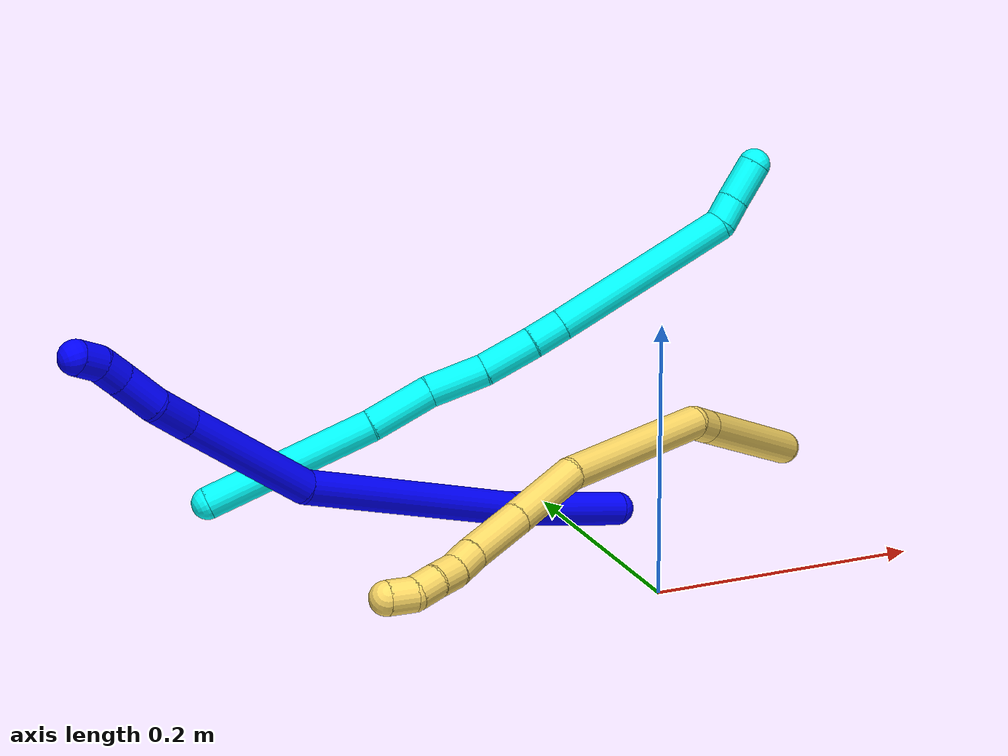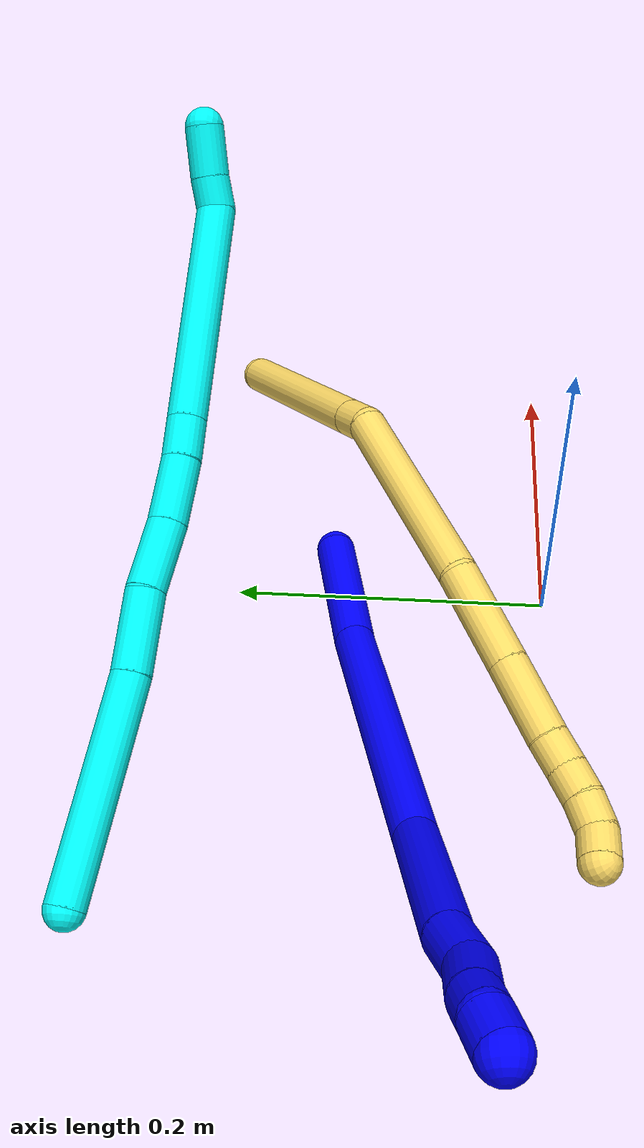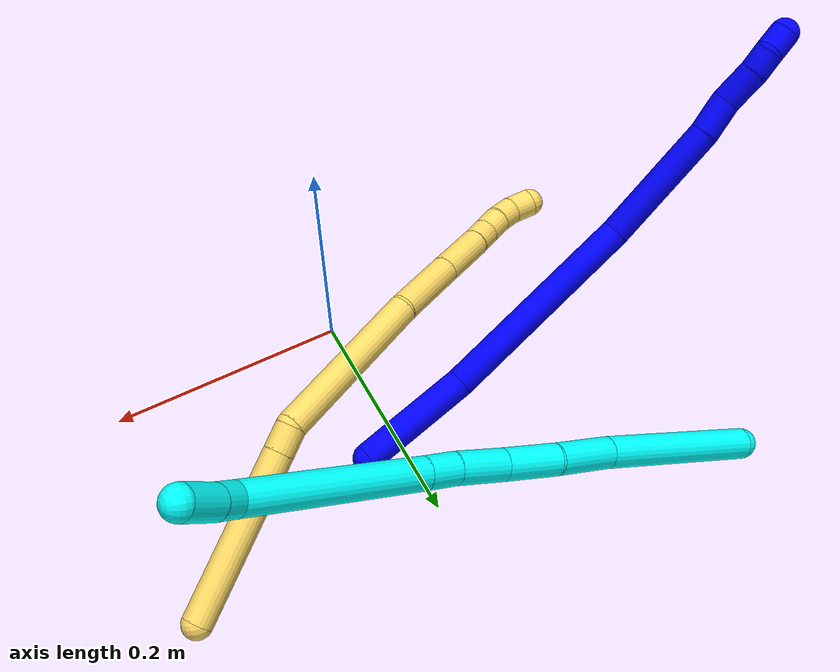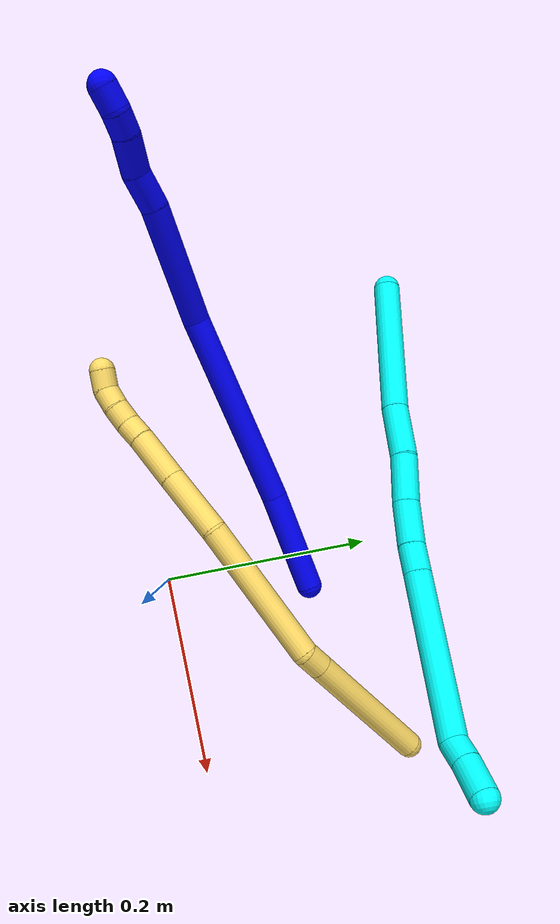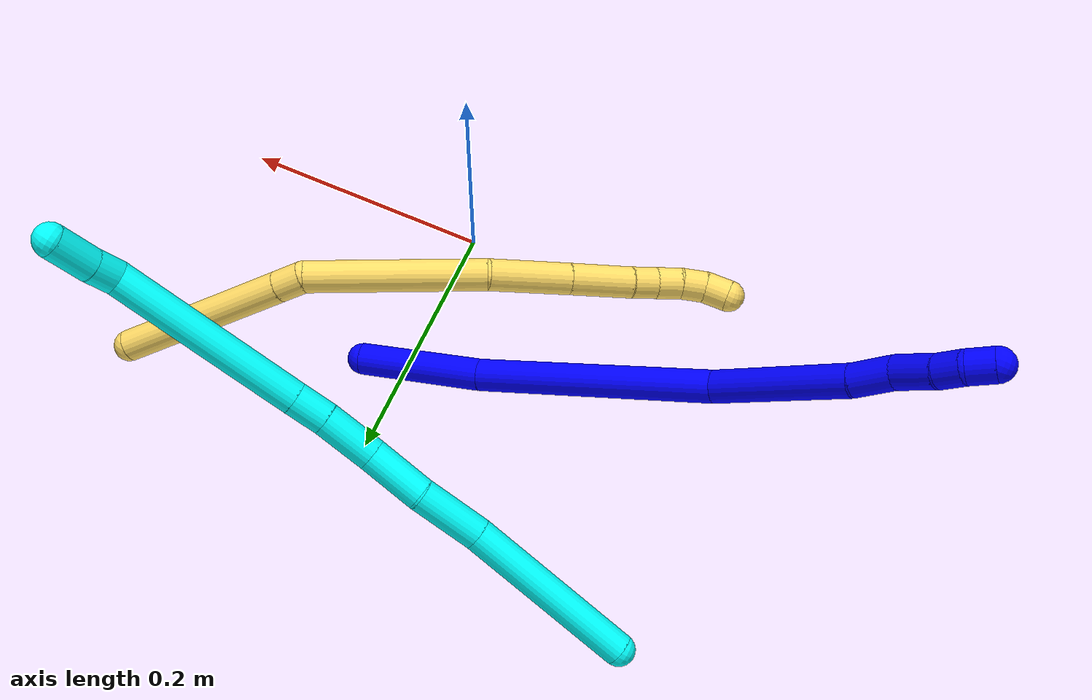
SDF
<sdf version="1.7">
 <world name="default">
  <model name="1">
   <static>0</static>
   <link name="1">
    <collision name="collision-cylinder-e_1_1_4">
     <pose>-0.019024 -0.002788 0.045607 0.061047 -0.394515 -0.012204</pose>
     <geometry><cylinder><radius>0.0125</radius><length>0.098988</length></cylinder></geometry>
     <surface>
      <friction><ode><mu>1.16</mu><mu2>1.16</mu2><slip1>0</slip1><slip2>0</slip2></ode></friction>
      <contact><ode><kp>1e+06</kp><kd>1</kd><max_vel>0</max_vel><min_depth>0.001</min_depth></ode></contact>
     </surface>
    </collision>
    <visual name="visual-cylinder-e_1_1_4">
     <pose>-0.019024 -0.002788 0.045607 0.061047 -0.394515 -0.012204</pose>
     <geometry><cylinder><radius>0.0125</radius><length>0.098988</length></cylinder></geometry>
     <material><ambient>0 0 1 1</ambient></material>
    </visual>
    <collision name="collision-cylinder-e_2_4_5">
     <pose>-0.082824 -0.010601 0.172428 0.0618 -0.503063 -0.015886</pose>
     <geometry><cylinder><radius>0.0125</radius><length>0.185752</length></cylinder></geometry>
     <surface>
      <friction><ode><mu>1.16</mu><mu2>1.16</mu2><slip1>0</slip1><slip2>0</slip2></ode></friction>
      <contact><ode><kp>1e+06</kp><kd>1</kd><max_vel>0</max_vel><min_depth>0.001</min_depth></ode></contact>
     </surface>
    </collision>
    <visual name="visual-cylinder-e_2_4_5">
     <pose>-0.082824 -0.010601 0.172428 0.0618 -0.503063 -0.015886</pose>
     <geometry><cylinder><radius>0.0125</radius><length>0.185752</length></cylinder></geometry>
     <material><ambient>0 0 1 1</ambient></material>
    </visual>
    <collision name="collision-cylinder-e_3_5_6">
     <pose>-0.165469 -0.028009 0.292034 0.311998 -0.75382 -0.124351</pose>
     <geometry><cylinder><radius>0.0125</radius><length>0.110658</length></cylinder></geometry>
     <surface>
      <friction><ode><mu>1.16</mu><mu2>1.16</mu2><slip1>0</slip1><slip2>0</slip2></ode></friction>
      <contact><ode><kp>1e+06</kp><kd>1</kd><max_vel>0</max_vel><min_depth>0.001</min_depth></ode></contact>
     </surface>
    </collision>
    <visual name="visual-cylinder-e_3_5_6">
     <pose>-0.165469 -0.028009 0.292034 0.311998 -0.75382 -0.124351</pose>
     <geometry><cylinder><radius>0.0125</radius><length>0.110658</length></cylinder></geometry>
     <material><ambient>0 0 1 1</ambient></material>
    </visual>
    <collision name="collision-cylinder-e_4_6_7">
     <pose>-0.21518 -0.041829 0.341066 0.134319 -0.834321 -0.059598</pose>
     <geometry><cylinder><radius>0.0125</radius><length>0.031972</length></cylinder></geometry>
     <surface>
      <friction><ode><mu>1.16</mu><mu2>1.16</mu2><slip1>0</slip1><slip2>0</slip2></ode></friction>
      <contact><ode><kp>1e+06</kp><kd>1</kd><max_vel>0</max_vel><min_depth>0.001</min_depth></ode></contact>
     </surface>
    </collision>
    <visual name="visual-cylinder-e_4_6_7">
     <pose>-0.21518 -0.041829 0.341066 0.134319 -0.834321 -0.059598</pose>
     <geometry><cylinder><radius>0.0125</radius><length>0.031972</length></cylinder></geometry>
     <material><ambient>0 0 1 1</ambient></material>
    </visual>
    <collision name="collision-cylinder-e_5_7_8">
     <pose>-0.238691 -0.049011 0.36147 0.531774 -0.800158 -0.229323</pose>
     <geometry><cylinder><radius>0.0125</radius><length>0.032523</length></cylinder></geometry>
     <surface>
      <friction><ode><mu>1.16</mu><mu2>1.16</mu2><slip1>0</slip1><slip2>0</slip2></ode></friction>
      <contact><ode><kp>1e+06</kp><kd>1</kd><max_vel>0</max_vel><min_depth>0.001</min_depth></ode></contact>
     </surface>
    </collision>
    <visual name="visual-cylinder-e_5_7_8">
     <pose>-0.238691 -0.049011 0.36147 0.531774 -0.800158 -0.229323</pose>
     <geometry><cylinder><radius>0.0125</radius><length>0.032523</length></cylinder></geometry>
     <material><ambient>0 0 1 1</ambient></material>
    </visual>
    <collision name="collision-cylinder-e_6_8_9">
     <pose>-0.25804 -0.056877 0.377344 0.334284 -0.870947 -0.156673</pose>
     <geometry><cylinder><radius>0.0125</radius><length>0.020085</length></cylinder></geometry>
     <surface>
      <friction><ode><mu>1.16</mu><mu2>1.16</mu2><slip1>0</slip1><slip2>0</slip2></ode></friction>
      <contact><ode><kp>1e+06</kp><kd>1</kd><max_vel>0</max_vel><min_depth>0.001</min_depth></ode></contact>
     </surface>
    </collision>
    <visual name="visual-cylinder-e_6_8_9">
     <pose>-0.25804 -0.056877 0.377344 0.334284 -0.870947 -0.156673</pose>
     <geometry><cylinder><radius>0.0125</radius><length>0.020085</length></cylinder></geometry>
     <material><ambient>0 0 1 1</ambient></material>
    </visual>
    <collision name="collision-cylinder-e_7_9_2">
     <pose>-0.271706 -0.05918 0.391478 0.022547 -0.640761 -0.007482</pose>
     <geometry><cylinder><radius>0.0125</radius><length>0.020023</length></cylinder></geometry>
     <surface>
      <friction><ode><mu>1.16</mu><mu2>1.16</mu2><slip1>0</slip1><slip2>0</slip2></ode></friction>
      <contact><ode><kp>1e+06</kp><kd>1</kd><max_vel>0</max_vel><min_depth>0.001</min_depth></ode></contact>
     </surface>
    </collision>
    <visual name="visual-cylinder-e_7_9_2">
     <pose>-0.271706 -0.05918 0.391478 0.022547 -0.640761 -0.007482</pose>
     <geometry><cylinder><radius>0.0125</radius><length>0.020023</length></cylinder></geometry>
     <material><ambient>0 0 1 1</ambient></material>
    </visual>
    <collision name="collision-sphere-2">
     <pose>-0.277691 -0.059361 0.399501 0 -0 0</pose>
     <geometry><sphere><radius>0.0125</radius></sphere></geometry>
     <surface>
      <friction><ode><mu>1.16</mu><mu2>1.16</mu2><slip1>0</slip1><slip2>0</slip2></ode></friction>
      <contact><ode><kp>1e+06</kp><kd>1</kd><max_vel>0</max_vel><min_depth>0.001</min_depth></ode></contact>
     </surface>
    </collision>
    <visual name="visual-sphere-2">
     <pose>-0.277691 -0.059361 0.399501 0 -0 0</pose>
     <geometry><sphere><radius>0.0125</radius></sphere></geometry>
     <material><ambient>0 0 1 1</ambient></material>
    </visual>
    <collision name="collision-sphere-9">
     <pose>-0.265722 -0.058999 0.383454 0 -0 0</pose>
     <geometry><sphere><radius>0.0125</radius></sphere></geometry>
     <surface>
      <friction><ode><mu>1.16</mu><mu2>1.16</mu2><slip1>0</slip1><slip2>0</slip2></ode></friction>
      <contact><ode><kp>1e+06</kp><kd>1</kd><max_vel>0</max_vel><min_depth>0.001</min_depth></ode></contact>
     </surface>
    </collision>
    <visual name="visual-sphere-9">
     <pose>-0.265722 -0.058999 0.383454 0 -0 0</pose>
     <geometry><sphere><radius>0.0125</radius></sphere></geometry>
     <material><ambient>0 0 1 1</ambient></material>
    </visual>
    <collision name="collision-sphere-4">
     <pose>-0.038047 -0.005575 0.091214 0 -0 0</pose>
     <geometry><sphere><radius>0.0125</radius></sphere></geometry>
     <surface>
      <friction><ode><mu>1.16</mu><mu2>1.16</mu2><slip1>0</slip1><slip2>0</slip2></ode></friction>
      <contact><ode><kp>1e+06</kp><kd>1</kd><max_vel>0</max_vel><min_depth>0.001</min_depth></ode></contact>
     </surface>
    </collision>
    <visual name="visual-sphere-4">
     <pose>-0.038047 -0.005575 0.091214 0 -0 0</pose>
     <geometry><sphere><radius>0.0125</radius></sphere></geometry>
     <material><ambient>0 0 1 1</ambient></material>
    </visual>
    <collision name="collision-sphere-1">
     <geometry><sphere><radius>0.0125</radius></sphere></geometry>
     <surface>
      <friction><ode><mu>1.16</mu><mu2>1.16</mu2><slip1>0</slip1><slip2>0</slip2></ode></friction>
      <contact><ode><kp>1e+06</kp><kd>1</kd><max_vel>0</max_vel><min_depth>0.001</min_depth></ode></contact>
     </surface>
    </collision>
    <visual name="visual-sphere-1">
     <geometry><sphere><radius>0.0125</radius></sphere></geometry>
     <material><ambient>0 0 1 1</ambient></material>
    </visual>
    <collision name="collision-sphere-8">
     <pose>-0.250358 -0.054755 0.371234 0 -0 0</pose>
     <geometry><sphere><radius>0.0125</radius></sphere></geometry>
     <surface>
      <friction><ode><mu>1.16</mu><mu2>1.16</mu2><slip1>0</slip1><slip2>0</slip2></ode></friction>
      <contact><ode><kp>1e+06</kp><kd>1</kd><max_vel>0</max_vel><min_depth>0.001</min_depth></ode></contact>
     </surface>
    </collision>
    <visual name="visual-sphere-8">
     <pose>-0.250358 -0.054755 0.371234 0 -0 0</pose>
     <geometry><sphere><radius>0.0125</radius></sphere></geometry>
     <material><ambient>0 0 1 1</ambient></material>
    </visual>
    <collision name="collision-sphere-5">
     <pose>-0.1276 -0.015626 0.253642 0 -0 0</pose>
     <geometry><sphere><radius>0.0125</radius></sphere></geometry>
     <surface>
      <friction><ode><mu>1.16</mu><mu2>1.16</mu2><slip1>0</slip1><slip2>0</slip2></ode></friction>
      <contact><ode><kp>1e+06</kp><kd>1</kd><max_vel>0</max_vel><min_depth>0.001</min_depth></ode></contact>
     </surface>
    </collision>
    <visual name="visual-sphere-5">
     <pose>-0.1276 -0.015626 0.253642 0 -0 0</pose>
     <geometry><sphere><radius>0.0125</radius></sphere></geometry>
     <material><ambient>0 0 1 1</ambient></material>
    </visual>
    <collision name="collision-sphere-6">
     <pose>-0.203337 -0.040391 0.330425 0 -0 0</pose>
     <geometry><sphere><radius>0.0125</radius></sphere></geometry>
     <surface>
      <friction><ode><mu>1.16</mu><mu2>1.16</mu2><slip1>0</slip1><slip2>0</slip2></ode></friction>
      <contact><ode><kp>1e+06</kp><kd>1</kd><max_vel>0</max_vel><min_depth>0.001</min_depth></ode></contact>
     </surface>
    </collision>
    <visual name="visual-sphere-6">
     <pose>-0.203337 -0.040391 0.330425 0 -0 0</pose>
     <geometry><sphere><radius>0.0125</radius></sphere></geometry>
     <material><ambient>0 0 1 1</ambient></material>
    </visual>
    <collision name="collision-sphere-7">
     <pose>-0.227024 -0.043267 0.351707 0 -0 0</pose>
     <geometry><sphere><radius>0.0125</radius></sphere></geometry>
     <surface>
      <friction><ode><mu>1.16</mu><mu2>1.16</mu2><slip1>0</slip1><slip2>0</slip2></ode></friction>
      <contact><ode><kp>1e+06</kp><kd>1</kd><max_vel>0</max_vel><min_depth>0.001</min_depth></ode></contact>
     </surface>
    </collision>
    <visual name="visual-sphere-7">
     <pose>-0.227024 -0.043267 0.351707 0 -0 0</pose>
     <geometry><sphere><radius>0.0125</radius></sphere></geometry>
     <material><ambient>0 0 1 1</ambient></material>
    </visual>
    <inertial>
     <pose>-0.121688 -0.021206 0.213874 0 -0 0</pose>
     <mass>0.5</mass>
     <inertia>
      <ixx>0.000603</ixx>
      <ixy>0</ixy>
      <ixz>0</ixz>
      <iyy>0.000725</iyy>
      <iyz>0</iyz>
      <izz>0.000475</izz>
     </inertia>
    </inertial>
   </link>
   <pose>0.032067 0.138016 0.011454 -2.01235 1.14097 1.24624</pose>
  </model>
  <model name="3">
   <static>0</static>
   <link name="3">
    <collision name="collision-cylinder-e_1_1_4">
     <pose>0.008327 0.005893 0.067107 -0.087591 0.122984 -0.005396</pose>
     <geometry><cylinder><radius>0.0125</radius><length>0.135756</length></cylinder></geometry>
     <surface>
      <friction><ode><mu>1.16</mu><mu2>1.16</mu2><slip1>0</slip1><slip2>0</slip2></ode></friction>
      <contact><ode><kp>1e+06</kp><kd>1</kd><max_vel>0</max_vel><min_depth>0.001</min_depth></ode></contact>
     </surface>
    </collision>
    <visual name="visual-cylinder-e_1_1_4">
     <pose>0.008327 0.005893 0.067107 -0.087591 0.122984 -0.005396</pose>
     <geometry><cylinder><radius>0.0125</radius><length>0.135756</length></cylinder></geometry>
     <material><ambient>0.003922 1 0.996078 1</ambient></material>
    </visual>
    <collision name="collision-cylinder-e_2_4_5">
     <pose>0.018675 0.011497 0.159555 0.011397 0.079574 0.000454</pose>
     <geometry><cylinder><radius>0.0125</radius><length>0.050845</length></cylinder></geometry>
     <surface>
      <friction><ode><mu>1.16</mu><mu2>1.16</mu2><slip1>0</slip1><slip2>0</slip2></ode></friction>
      <contact><ode><kp>1e+06</kp><kd>1</kd><max_vel>0</max_vel><min_depth>0.001</min_depth></ode></contact>
     </surface>
    </collision>
    <visual name="visual-cylinder-e_2_4_5">
     <pose>0.018675 0.011497 0.159555 0.011397 0.079574 0.000454</pose>
     <geometry><cylinder><radius>0.0125</radius><length>0.050845</length></cylinder></geometry>
     <material><ambient>0.003922 1 0.996078 1</ambient></material>
    </visual>
    <collision name="collision-cylinder-e_3_5_6">
     <pose>0.022794 0.014568 0.207063 -0.150407 0.093309 -0.007036</pose>
     <geometry><cylinder><radius>0.0125</radius><length>0.045039</length></cylinder></geometry>
     <surface>
      <friction><ode><mu>1.16</mu><mu2>1.16</mu2><slip1>0</slip1><slip2>0</slip2></ode></friction>
      <contact><ode><kp>1e+06</kp><kd>1</kd><max_vel>0</max_vel><min_depth>0.001</min_depth></ode></contact>
     </surface>
    </collision>
    <visual name="visual-cylinder-e_3_5_6">
     <pose>0.022794 0.014568 0.207063 -0.150407 0.093309 -0.007036</pose>
     <geometry><cylinder><radius>0.0125</radius><length>0.045039</length></cylinder></geometry>
     <material><ambient>0.003922 1 0.996078 1</ambient></material>
    </visual>
    <collision name="collision-cylinder-e_4_6_7">
     <pose>0.027433 0.018205 0.250039 -0.013307 0.121532 -0.00081</pose>
     <geometry><cylinder><radius>0.0125</radius><length>0.041928</length></cylinder></geometry>
     <surface>
      <friction><ode><mu>1.16</mu><mu2>1.16</mu2><slip1>0</slip1><slip2>0</slip2></ode></friction>
      <contact><ode><kp>1e+06</kp><kd>1</kd><max_vel>0</max_vel><min_depth>0.001</min_depth></ode></contact>
     </surface>
    </collision>
    <visual name="visual-cylinder-e_4_6_7">
     <pose>0.027433 0.018205 0.250039 -0.013307 0.121532 -0.00081</pose>
     <geometry><cylinder><radius>0.0125</radius><length>0.041928</length></cylinder></geometry>
     <material><ambient>0.003922 1 0.996078 1</ambient></material>
    </visual>
    <collision name="collision-cylinder-e_5_7_8">
     <pose>0.030771 0.018023 0.284056 0.03469 0.060172 0.001044</pose>
     <geometry><cylinder><radius>0.0125</radius><length>0.026484</length></cylinder></geometry>
     <surface>
      <friction><ode><mu>1.16</mu><mu2>1.16</mu2><slip1>0</slip1><slip2>0</slip2></ode></friction>
      <contact><ode><kp>1e+06</kp><kd>1</kd><max_vel>0</max_vel><min_depth>0.001</min_depth></ode></contact>
     </surface>
    </collision>
    <visual name="visual-cylinder-e_5_7_8">
     <pose>0.030771 0.018023 0.284056 0.03469 0.060172 0.001044</pose>
     <geometry><cylinder><radius>0.0125</radius><length>0.026484</length></cylinder></geometry>
     <material><ambient>0.003922 1 0.996078 1</ambient></material>
    </visual>
    <collision name="collision-cylinder-e_6_8_9">
     <pose>0.037388 0.014015 0.370076 0.04871 0.079672 0.001942</pose>
     <geometry><cylinder><radius>0.0125</radius><length>0.146256</length></cylinder></geometry>
     <surface>
      <friction><ode><mu>1.16</mu><mu2>1.16</mu2><slip1>0</slip1><slip2>0</slip2></ode></friction>
      <contact><ode><kp>1e+06</kp><kd>1</kd><max_vel>0</max_vel><min_depth>0.001</min_depth></ode></contact>
     </surface>
    </collision>
    <visual name="visual-cylinder-e_6_8_9">
     <pose>0.037388 0.014015 0.370076 0.04871 0.079672 0.001942</pose>
     <geometry><cylinder><radius>0.0125</radius><length>0.146256</length></cylinder></geometry>
     <material><ambient>0.003922 1 0.996078 1</ambient></material>
    </visual>
    <collision name="collision-cylinder-e_7_9_10">
     <pose>0.044392 0.005076 0.451834 0.542143 0.112925 0.031414</pose>
     <geometry><cylinder><radius>0.0125</radius><length>0.021027</length></cylinder></geometry>
     <surface>
      <friction><ode><mu>1.16</mu><mu2>1.16</mu2><slip1>0</slip1><slip2>0</slip2></ode></friction>
      <contact><ode><kp>1e+06</kp><kd>1</kd><max_vel>0</max_vel><min_depth>0.001</min_depth></ode></contact>
     </surface>
    </collision>
    <visual name="visual-cylinder-e_7_9_10">
     <pose>0.044392 0.005076 0.451834 0.542143 0.112925 0.031414</pose>
     <geometry><cylinder><radius>0.0125</radius><length>0.021027</length></cylinder></geometry>
     <material><ambient>0.003922 1 0.996078 1</ambient></material>
    </visual>
    <collision name="collision-cylinder-e_8_10_2">
     <pose>0.048685 -0.00808 0.474811 0.505605 0.191444 0.049597</pose>
     <geometry><cylinder><radius>0.0125</radius><length>0.032665</length></cylinder></geometry>
     <surface>
      <friction><ode><mu>1.16</mu><mu2>1.16</mu2><slip1>0</slip1><slip2>0</slip2></ode></friction>
      <contact><ode><kp>1e+06</kp><kd>1</kd><max_vel>0</max_vel><min_depth>0.001</min_depth></ode></contact>
     </surface>
    </collision>
    <visual name="visual-cylinder-e_8_10_2">
     <pose>0.048685 -0.00808 0.474811 0.505605 0.191444 0.049597</pose>
     <geometry><cylinder><radius>0.0125</radius><length>0.032665</length></cylinder></geometry>
     <material><ambient>0.003922 1 0.996078 1</ambient></material>
    </visual>
    <collision name="collision-sphere-2">
     <pose>0.051793 -0.015846 0.488839 0 -0 0</pose>
     <geometry><sphere><radius>0.0125</radius></sphere></geometry>
     <surface>
      <friction><ode><mu>1.16</mu><mu2>1.16</mu2><slip1>0</slip1><slip2>0</slip2></ode></friction>
      <contact><ode><kp>1e+06</kp><kd>1</kd><max_vel>0</max_vel><min_depth>0.001</min_depth></ode></contact>
     </surface>
    </collision>
    <visual name="visual-sphere-2">
     <pose>0.051793 -0.015846 0.488839 0 -0 0</pose>
     <geometry><sphere><radius>0.0125</radius></sphere></geometry>
     <material><ambient>0.003922 1 0.996078 1</ambient></material>
    </visual>
    <collision name="collision-sphere-10">
     <pose>0.045577 -0.000314 0.460783 0 -0 0</pose>
     <geometry><sphere><radius>0.0125</radius></sphere></geometry>
     <surface>
      <friction><ode><mu>1.16</mu><mu2>1.16</mu2><slip1>0</slip1><slip2>0</slip2></ode></friction>
      <contact><ode><kp>1e+06</kp><kd>1</kd><max_vel>0</max_vel><min_depth>0.001</min_depth></ode></contact>
     </surface>
    </collision>
    <visual name="visual-sphere-10">
     <pose>0.045577 -0.000314 0.460783 0 -0 0</pose>
     <geometry><sphere><radius>0.0125</radius></sphere></geometry>
     <material><ambient>0.003922 1 0.996078 1</ambient></material>
    </visual>
    <collision name="collision-sphere-9">
     <pose>0.043208 0.010466 0.442886 0 -0 0</pose>
     <geometry><sphere><radius>0.0125</radius></sphere></geometry>
     <surface>
      <friction><ode><mu>1.16</mu><mu2>1.16</mu2><slip1>0</slip1><slip2>0</slip2></ode></friction>
      <contact><ode><kp>1e+06</kp><kd>1</kd><max_vel>0</max_vel><min_depth>0.001</min_depth></ode></contact>
     </surface>
    </collision>
    <visual name="visual-sphere-9">
     <pose>0.043208 0.010466 0.442886 0 -0 0</pose>
     <geometry><sphere><radius>0.0125</radius></sphere></geometry>
     <material><ambient>0.003922 1 0.996078 1</ambient></material>
    </visual>
    <collision name="collision-sphere-4">
     <pose>0.016654 0.011786 0.134214 0 -0 0</pose>
     <geometry><sphere><radius>0.0125</radius></sphere></geometry>
     <surface>
      <friction><ode><mu>1.16</mu><mu2>1.16</mu2><slip1>0</slip1><slip2>0</slip2></ode></friction>
      <contact><ode><kp>1e+06</kp><kd>1</kd><max_vel>0</max_vel><min_depth>0.001</min_depth></ode></contact>
     </surface>
    </collision>
    <visual name="visual-sphere-4">
     <pose>0.016654 0.011786 0.134214 0 -0 0</pose>
     <geometry><sphere><radius>0.0125</radius></sphere></geometry>
     <material><ambient>0.003922 1 0.996078 1</ambient></material>
    </visual>
    <collision name="collision-sphere-1">
     <geometry><sphere><radius>0.0125</radius></sphere></geometry>
     <surface>
      <friction><ode><mu>1.16</mu><mu2>1.16</mu2><slip1>0</slip1><slip2>0</slip2></ode></friction>
      <contact><ode><kp>1e+06</kp><kd>1</kd><max_vel>0</max_vel><min_depth>0.001</min_depth></ode></contact>
     </surface>
    </collision>
    <visual name="visual-sphere-1">
     <geometry><sphere><radius>0.0125</radius></sphere></geometry>
     <material><ambient>0.003922 1 0.996078 1</ambient></material>
    </visual>
    <collision name="collision-sphere-8">
     <pose>0.031567 0.017565 0.297266 0 -0 0</pose>
     <geometry><sphere><radius>0.0125</radius></sphere></geometry>
     <surface>
      <friction><ode><mu>1.16</mu><mu2>1.16</mu2><slip1>0</slip1><slip2>0</slip2></ode></friction>
      <contact><ode><kp>1e+06</kp><kd>1</kd><max_vel>0</max_vel><min_depth>0.001</min_depth></ode></contact>
     </surface>
    </collision>
    <visual name="visual-sphere-8">
     <pose>0.031567 0.017565 0.297266 0 -0 0</pose>
     <geometry><sphere><radius>0.0125</radius></sphere></geometry>
     <material><ambient>0.003922 1 0.996078 1</ambient></material>
    </visual>
    <collision name="collision-sphere-5">
     <pose>0.020695 0.011209 0.184895 0 -0 0</pose>
     <geometry><sphere><radius>0.0125</radius></sphere></geometry>
     <surface>
      <friction><ode><mu>1.16</mu><mu2>1.16</mu2><slip1>0</slip1><slip2>0</slip2></ode></friction>
      <contact><ode><kp>1e+06</kp><kd>1</kd><max_vel>0</max_vel><min_depth>0.001</min_depth></ode></contact>
     </surface>
    </collision>
    <visual name="visual-sphere-5">
     <pose>0.020695 0.011209 0.184895 0 -0 0</pose>
     <geometry><sphere><radius>0.0125</radius></sphere></geometry>
     <material><ambient>0.003922 1 0.996078 1</ambient></material>
    </visual>
    <collision name="collision-sphere-6">
     <pose>0.024892 0.017928 0.229231 0 -0 0</pose>
     <geometry><sphere><radius>0.0125</radius></sphere></geometry>
     <surface>
      <friction><ode><mu>1.16</mu><mu2>1.16</mu2><slip1>0</slip1><slip2>0</slip2></ode></friction>
      <contact><ode><kp>1e+06</kp><kd>1</kd><max_vel>0</max_vel><min_depth>0.001</min_depth></ode></contact>
     </surface>
    </collision>
    <visual name="visual-sphere-6">
     <pose>0.024892 0.017928 0.229231 0 -0 0</pose>
     <geometry><sphere><radius>0.0125</radius></sphere></geometry>
     <material><ambient>0.003922 1 0.996078 1</ambient></material>
    </visual>
    <collision name="collision-sphere-7">
     <pose>0.029975 0.018482 0.270846 0 -0 0</pose>
     <geometry><sphere><radius>0.0125</radius></sphere></geometry>
     <surface>
      <friction><ode><mu>1.16</mu><mu2>1.16</mu2><slip1>0</slip1><slip2>0</slip2></ode></friction>
      <contact><ode><kp>1e+06</kp><kd>1</kd><max_vel>0</max_vel><min_depth>0.001</min_depth></ode></contact>
     </surface>
    </collision>
    <visual name="visual-sphere-7">
     <pose>0.029975 0.018482 0.270846 0 -0 0</pose>
     <geometry><sphere><radius>0.0125</radius></sphere></geometry>
     <material><ambient>0.003922 1 0.996078 1</ambient></material>
    </visual>
    <inertial>
     <pose>0.026127 0.010348 0.247383 0 -0 0</pose>
     <mass>0.5</mass>
     <inertia>
      <ixx>0.00052</ixx>
      <ixy>0</ixy>
      <ixz>0</ixz>
      <iyy>0.000515</iyy>
      <iyz>0</iyz>
      <izz>-1.7e-05</izz>
     </inertia>
    </inertial>
   </link>
   <pose>-0.244589 0.271774 0.011495 -1.09011 -0.622008 -1.88621</pose>
  </model>
  <model name="5">
   <static>0</static>
   <link name="5">
    <collision name="collision-cylinder-e_1_1_4">
     <pose>-0.044295 0.012026 0.052622 -0.224686 -0.687179 0.080684</pose>
     <geometry><cylinder><radius>0.0125</radius><length>0.139653</length></cylinder></geometry>
     <surface>
      <friction><ode><mu>1.16</mu><mu2>1.16</mu2><slip1>0</slip1><slip2>0</slip2></ode></friction>
      <contact><ode><kp>1e+06</kp><kd>1</kd><max_vel>0</max_vel><min_depth>0.001</min_depth></ode></contact>
     </surface>
    </collision>
    <visual name="visual-cylinder-e_1_1_4">
     <pose>-0.044295 0.012026 0.052622 -0.224686 -0.687179 0.080684</pose>
     <geometry><cylinder><radius>0.0125</radius><length>0.139653</length></cylinder></geometry>
     <material><ambient>1 0.858824 0.4 1</ambient></material>
    </visual>
    <collision name="collision-cylinder-e_2_4_5">
     <pose>-0.095582 0.025994 0.113665 -0.226595 -0.680225 0.080485</pose>
     <geometry><cylinder><radius>0.0125</radius><length>0.022234</length></cylinder></geometry>
     <surface>
      <friction><ode><mu>1.16</mu><mu2>1.16</mu2><slip1>0</slip1><slip2>0</slip2></ode></friction>
      <contact><ode><kp>1e+06</kp><kd>1</kd><max_vel>0</max_vel><min_depth>0.001</min_depth></ode></contact>
     </surface>
    </collision>
    <visual name="visual-cylinder-e_2_4_5">
     <pose>-0.095582 0.025994 0.113665 -0.226595 -0.680225 0.080485</pose>
     <geometry><cylinder><radius>0.0125</radius><length>0.022234</length></cylinder></geometry>
     <material><ambient>1 0.858824 0.4 1</ambient></material>
    </visual>
    <collision name="collision-cylinder-e_3_5_6">
     <pose>-0.166745 0.031574 0.151764 -0.121961 -1.13477 0.077781</pose>
     <geometry><cylinder><radius>0.0125</radius><length>0.14159</length></cylinder></geometry>
     <surface>
      <friction><ode><mu>1.16</mu><mu2>1.16</mu2><slip1>0</slip1><slip2>0</slip2></ode></friction>
      <contact><ode><kp>1e+06</kp><kd>1</kd><max_vel>0</max_vel><min_depth>0.001</min_depth></ode></contact>
     </surface>
    </collision>
    <visual name="visual-cylinder-e_3_5_6">
     <pose>-0.166745 0.031574 0.151764 -0.121961 -1.13477 0.077781</pose>
     <geometry><cylinder><radius>0.0125</radius><length>0.14159</length></cylinder></geometry>
     <material><ambient>1 0.858824 0.4 1</ambient></material>
    </visual>
    <collision name="collision-cylinder-e_4_6_7">
     <pose>-0.261939 0.031049 0.190431 0.433647 -1.26171 -0.31907</pose>
     <geometry><cylinder><radius>0.0125</radius><length>0.06513</length></cylinder></geometry>
     <surface>
      <friction><ode><mu>1.16</mu><mu2>1.16</mu2><slip1>0</slip1><slip2>0</slip2></ode></friction>
      <contact><ode><kp>1e+06</kp><kd>1</kd><max_vel>0</max_vel><min_depth>0.001</min_depth></ode></contact>
     </surface>
    </collision>
    <visual name="visual-cylinder-e_4_6_7">
     <pose>-0.261939 0.031049 0.190431 0.433647 -1.26171 -0.31907</pose>
     <geometry><cylinder><radius>0.0125</radius><length>0.06513</length></cylinder></geometry>
     <material><ambient>1 0.858824 0.4 1</ambient></material>
    </visual>
    <collision name="collision-cylinder-e_5_7_8">
     <pose>-0.317041 0.024006 0.206392 0.391698 -1.2672 -0.289458</pose>
     <geometry><cylinder><radius>0.0125</radius><length>0.05047</length></cylinder></geometry>
     <surface>
      <friction><ode><mu>1.16</mu><mu2>1.16</mu2><slip1>0</slip1><slip2>0</slip2></ode></friction>
      <contact><ode><kp>1e+06</kp><kd>1</kd><max_vel>0</max_vel><min_depth>0.001</min_depth></ode></contact>
     </surface>
    </collision>
    <visual name="visual-cylinder-e_5_7_8">
     <pose>-0.317041 0.024006 0.206392 0.391698 -1.2672 -0.289458</pose>
     <geometry><cylinder><radius>0.0125</radius><length>0.05047</length></cylinder></geometry>
     <material><ambient>1 0.858824 0.4 1</ambient></material>
    </visual>
    <collision name="collision-cylinder-e_6_8_9">
     <pose>-0.350914 0.019198 0.216268 0.586422 -1.22889 -0.41976</pose>
     <geometry><cylinder><radius>0.0125</radius><length>0.020788</length></cylinder></geometry>
     <surface>
      <friction><ode><mu>1.16</mu><mu2>1.16</mu2><slip1>0</slip1><slip2>0</slip2></ode></friction>
      <contact><ode><kp>1e+06</kp><kd>1</kd><max_vel>0</max_vel><min_depth>0.001</min_depth></ode></contact>
     </surface>
    </collision>
    <visual name="visual-cylinder-e_6_8_9">
     <pose>-0.350914 0.019198 0.216268 0.586422 -1.22889 -0.41976</pose>
     <geometry><cylinder><radius>0.0125</radius><length>0.020788</length></cylinder></geometry>
     <material><ambient>1 0.858824 0.4 1</ambient></material>
    </visual>
    <collision name="collision-cylinder-e_7_9_10">
     <pose>-0.370024 0.017259 0.222864 0.002892 -1.19334 -0.001965</pose>
     <geometry><cylinder><radius>0.0125</radius><length>0.020045</length></cylinder></geometry>
     <surface>
      <friction><ode><mu>1.16</mu><mu2>1.16</mu2><slip1>0</slip1><slip2>0</slip2></ode></friction>
      <contact><ode><kp>1e+06</kp><kd>1</kd><max_vel>0</max_vel><min_depth>0.001</min_depth></ode></contact>
     </surface>
    </collision>
    <visual name="visual-cylinder-e_7_9_10">
     <pose>-0.370024 0.017259 0.222864 0.002892 -1.19334 -0.001965</pose>
     <geometry><cylinder><radius>0.0125</radius><length>0.020045</length></cylinder></geometry>
     <material><ambient>1 0.858824 0.4 1</ambient></material>
    </visual>
    <collision name="collision-cylinder-e_8_10_11">
     <pose>-0.389064 0.017282 0.22893 -0.014251 -1.33148 0.011192</pose>
     <geometry><cylinder><radius>0.0125</radius><length>0.020016</length></cylinder></geometry>
     <surface>
      <friction><ode><mu>1.16</mu><mu2>1.16</mu2><slip1>0</slip1><slip2>0</slip2></ode></friction>
      <contact><ode><kp>1e+06</kp><kd>1</kd><max_vel>0</max_vel><min_depth>0.001</min_depth></ode></contact>
     </surface>
    </collision>
    <visual name="visual-cylinder-e_8_10_11">
     <pose>-0.389064 0.017282 0.22893 -0.014251 -1.33148 0.011192</pose>
     <geometry><cylinder><radius>0.0125</radius><length>0.020016</length></cylinder></geometry>
     <material><ambient>1 0.858824 0.4 1</ambient></material>
    </visual>
    <collision name="collision-cylinder-e_9_11_2">
     <pose>-0.407819 0.021399 0.232881 -1.20196 -1.11946 0.811457</pose>
     <geometry><cylinder><radius>0.0125</radius><length>0.020075</length></cylinder></geometry>
     <surface>
      <friction><ode><mu>1.16</mu><mu2>1.16</mu2><slip1>0</slip1><slip2>0</slip2></ode></friction>
      <contact><ode><kp>1e+06</kp><kd>1</kd><max_vel>0</max_vel><min_depth>0.001</min_depth></ode></contact>
     </surface>
    </collision>
    <visual name="visual-cylinder-e_9_11_2">
     <pose>-0.407819 0.021399 0.232881 -1.20196 -1.11946 0.811457</pose>
     <geometry><cylinder><radius>0.0125</radius><length>0.020075</length></cylinder></geometry>
     <material><ambient>1 0.858824 0.4 1</ambient></material>
    </visual>
    <collision name="collision-sphere-2">
     <pose>-0.416851 0.025483 0.234459 0 -0 0</pose>
     <geometry><sphere><radius>0.0125</radius></sphere></geometry>
     <surface>
      <friction><ode><mu>1.16</mu><mu2>1.16</mu2><slip1>0</slip1><slip2>0</slip2></ode></friction>
      <contact><ode><kp>1e+06</kp><kd>1</kd><max_vel>0</max_vel><min_depth>0.001</min_depth></ode></contact>
     </surface>
    </collision>
    <visual name="visual-sphere-2">
     <pose>-0.416851 0.025483 0.234459 0 -0 0</pose>
     <geometry><sphere><radius>0.0125</radius></sphere></geometry>
     <material><ambient>1 0.858824 0.4 1</ambient></material>
    </visual>
    <collision name="collision-sphere-11">
     <pose>-0.398786 0.017316 0.231302 0 -0 0</pose>
     <geometry><sphere><radius>0.0125</radius></sphere></geometry>
     <surface>
      <friction><ode><mu>1.16</mu><mu2>1.16</mu2><slip1>0</slip1><slip2>0</slip2></ode></friction>
      <contact><ode><kp>1e+06</kp><kd>1</kd><max_vel>0</max_vel><min_depth>0.001</min_depth></ode></contact>
     </surface>
    </collision>
    <visual name="visual-sphere-11">
     <pose>-0.398786 0.017316 0.231302 0 -0 0</pose>
     <geometry><sphere><radius>0.0125</radius></sphere></geometry>
     <material><ambient>1 0.858824 0.4 1</ambient></material>
    </visual>
    <collision name="collision-sphere-10">
     <pose>-0.379341 0.017248 0.226558 0 -0 0</pose>
     <geometry><sphere><radius>0.0125</radius></sphere></geometry>
     <surface>
      <friction><ode><mu>1.16</mu><mu2>1.16</mu2><slip1>0</slip1><slip2>0</slip2></ode></friction>
      <contact><ode><kp>1e+06</kp><kd>1</kd><max_vel>0</max_vel><min_depth>0.001</min_depth></ode></contact>
     </surface>
    </collision>
    <visual name="visual-sphere-10">
     <pose>-0.379341 0.017248 0.226558 0 -0 0</pose>
     <geometry><sphere><radius>0.0125</radius></sphere></geometry>
     <material><ambient>1 0.858824 0.4 1</ambient></material>
    </visual>
    <collision name="collision-sphere-9">
     <pose>-0.360707 0.01727 0.21917 0 -0 0</pose>
     <geometry><sphere><radius>0.0125</radius></sphere></geometry>
     <surface>
      <friction><ode><mu>1.16</mu><mu2>1.16</mu2><slip1>0</slip1><slip2>0</slip2></ode></friction>
      <contact><ode><kp>1e+06</kp><kd>1</kd><max_vel>0</max_vel><min_depth>0.001</min_depth></ode></contact>
     </surface>
    </collision>
    <visual name="visual-sphere-9">
     <pose>-0.360707 0.01727 0.21917 0 -0 0</pose>
     <geometry><sphere><radius>0.0125</radius></sphere></geometry>
     <material><ambient>1 0.858824 0.4 1</ambient></material>
    </visual>
    <collision name="collision-sphere-4">
     <pose>-0.08859 0.024053 0.105243 0 -0 0</pose>
     <geometry><sphere><radius>0.0125</radius></sphere></geometry>
     <surface>
      <friction><ode><mu>1.16</mu><mu2>1.16</mu2><slip1>0</slip1><slip2>0</slip2></ode></friction>
      <contact><ode><kp>1e+06</kp><kd>1</kd><max_vel>0</max_vel><min_depth>0.001</min_depth></ode></contact>
     </surface>
    </collision>
    <visual name="visual-sphere-4">
     <pose>-0.08859 0.024053 0.105243 0 -0 0</pose>
     <geometry><sphere><radius>0.0125</radius></sphere></geometry>
     <material><ambient>1 0.858824 0.4 1</ambient></material>
    </visual>
    <collision name="collision-sphere-1">
     <geometry><sphere><radius>0.0125</radius></sphere></geometry>
     <surface>
      <friction><ode><mu>1.16</mu><mu2>1.16</mu2><slip1>0</slip1><slip2>0</slip2></ode></friction>
      <contact><ode><kp>1e+06</kp><kd>1</kd><max_vel>0</max_vel><min_depth>0.001</min_depth></ode></contact>
     </surface>
    </collision>
    <visual name="visual-sphere-1">
     <geometry><sphere><radius>0.0125</radius></sphere></geometry>
     <material><ambient>1 0.858824 0.4 1</ambient></material>
    </visual>
    <collision name="collision-sphere-8">
     <pose>-0.341122 0.021127 0.213365 0 -0 0</pose>
     <geometry><sphere><radius>0.0125</radius></sphere></geometry>
     <surface>
      <friction><ode><mu>1.16</mu><mu2>1.16</mu2><slip1>0</slip1><slip2>0</slip2></ode></friction>
      <contact><ode><kp>1e+06</kp><kd>1</kd><max_vel>0</max_vel><min_depth>0.001</min_depth></ode></contact>
     </surface>
    </collision>
    <visual name="visual-sphere-8">
     <pose>-0.341122 0.021127 0.213365 0 -0 0</pose>
     <geometry><sphere><radius>0.0125</radius></sphere></geometry>
     <material><ambient>1 0.858824 0.4 1</ambient></material>
    </visual>
    <collision name="collision-sphere-5">
     <pose>-0.102574 0.027936 0.122086 0 -0 0</pose>
     <geometry><sphere><radius>0.0125</radius></sphere></geometry>
     <surface>
      <friction><ode><mu>1.16</mu><mu2>1.16</mu2><slip1>0</slip1><slip2>0</slip2></ode></friction>
      <contact><ode><kp>1e+06</kp><kd>1</kd><max_vel>0</max_vel><min_depth>0.001</min_depth></ode></contact>
     </surface>
    </collision>
    <visual name="visual-sphere-5">
     <pose>-0.102574 0.027936 0.122086 0 -0 0</pose>
     <geometry><sphere><radius>0.0125</radius></sphere></geometry>
     <material><ambient>1 0.858824 0.4 1</ambient></material>
    </visual>
    <collision name="collision-sphere-6">
     <pose>-0.230917 0.035211 0.181441 0 -0 0</pose>
     <geometry><sphere><radius>0.0125</radius></sphere></geometry>
     <surface>
      <friction><ode><mu>1.16</mu><mu2>1.16</mu2><slip1>0</slip1><slip2>0</slip2></ode></friction>
      <contact><ode><kp>1e+06</kp><kd>1</kd><max_vel>0</max_vel><min_depth>0.001</min_depth></ode></contact>
     </surface>
    </collision>
    <visual name="visual-sphere-6">
     <pose>-0.230917 0.035211 0.181441 0 -0 0</pose>
     <geometry><sphere><radius>0.0125</radius></sphere></geometry>
     <material><ambient>1 0.858824 0.4 1</ambient></material>
    </visual>
    <collision name="collision-sphere-7">
     <pose>-0.292961 0.026886 0.19942 0 -0 0</pose>
     <geometry><sphere><radius>0.0125</radius></sphere></geometry>
     <surface>
      <friction><ode><mu>1.16</mu><mu2>1.16</mu2><slip1>0</slip1><slip2>0</slip2></ode></friction>
      <contact><ode><kp>1e+06</kp><kd>1</kd><max_vel>0</max_vel><min_depth>0.001</min_depth></ode></contact>
     </surface>
    </collision>
    <visual name="visual-sphere-7">
     <pose>-0.292961 0.026886 0.19942 0 -0 0</pose>
     <geometry><sphere><radius>0.0125</radius></sphere></geometry>
     <material><ambient>1 0.858824 0.4 1</ambient></material>
    </visual>
    <inertial>
     <pose>-0.191336 0.022965 0.144808 0 -0 0</pose>
     <mass>0.5</mass>
     <inertia>
      <ixx>0.000282</ixx>
      <ixy>0</ixy>
      <ixz>0</ixz>
      <iyy>0.000537</iyy>
      <iyz>0</iyz>
      <izz>0.00038</izz>
     </inertia>
    </inertial>
   </link>
   <pose>0.207244 0.204918 0.012623 0.703293 -0.380961 0.208738</pose>
  </model>
 </world>
</sdf>
